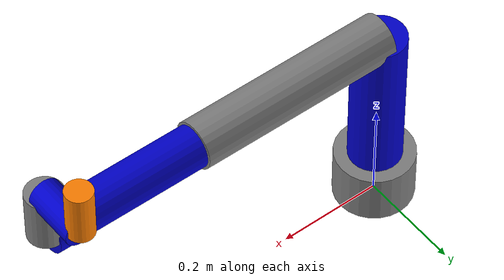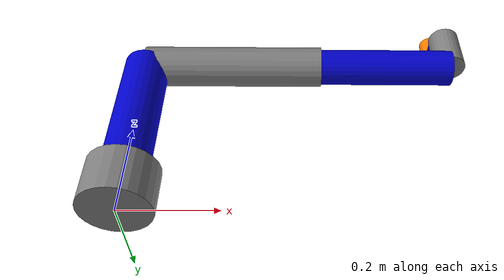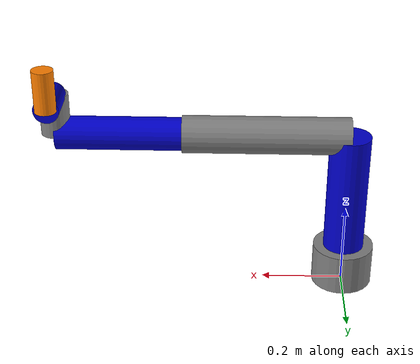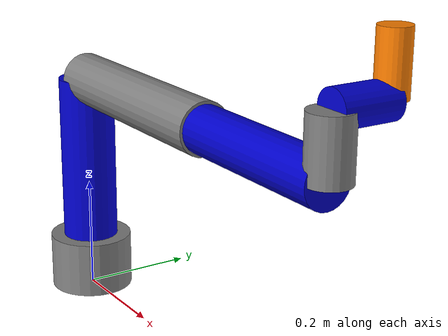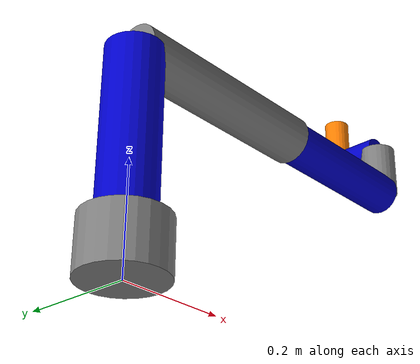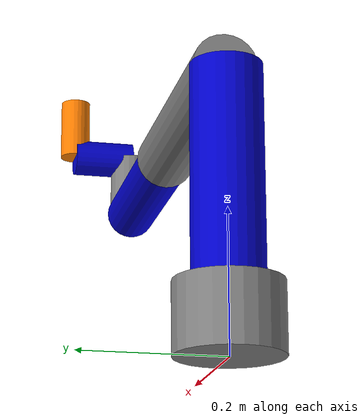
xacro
<?xml version="1.0"?>
<robot name="simple_manipulator" xmlns:xacro="http://www.ros.org/wiki/xacro">

  <!-- Constants -->
  <xacro:property name="PI" value="3.14159265359" />

  <!-- Material definitions -->
  <material name="blue">
    <color rgba="0.0 0.0 0.8 1.0"/>
  </material>

  <material name="grey">
    <color rgba="0.5 0.5 0.5 1.0"/>
  </material>

  <material name="orange">
    <color rgba="1.0 0.5 0.0 1.0"/>
  </material>

  <!-- World link (fixed base) -->
  <link name="world"/>

  <!-- Base link -->
  <link name="base_link">
    <visual>
      <origin xyz="0 0 0.05" rpy="0 0 0"/>
      <geometry>
        <cylinder radius="0.075" length="0.1"/>
      </geometry>
      <material name="grey"/>
    </visual>
    <collision>
      <origin xyz="0 0 0.05" rpy="0 0 0"/>
      <geometry>
        <cylinder radius="0.075" length="0.1"/>
      </geometry>
    </collision>
    <inertial>
      <mass value="2.0"/>
      <origin xyz="0 0 0.05" rpy="0 0 0"/>
      <inertia ixx="0.01" ixy="0.0" ixz="0.0" iyy="0.01" iyz="0.0" izz="0.01"/>
    </inertial>
  </link>

  <joint name="world_to_base" type="fixed">
    <parent link="world"/>
    <child link="base_link"/>
    <origin xyz="0 0 0" rpy="0 0 0"/>
  </joint>

  <!-- Link 1 (Shoulder) -->
  <link name="link_1">
    <visual>
      <origin xyz="0 0 0.15" rpy="0 0 0"/>
      <geometry>
        <cylinder radius="0.05" length="0.3"/>
      </geometry>
      <material name="blue"/>
    </visual>
    <collision>
      <origin xyz="0 0 0.15" rpy="0 0 0"/>
      <geometry>
        <cylinder radius="0.05" length="0.3"/>
      </geometry>
    </collision>
    <inertial>
      <mass value="1.5"/>
      <origin xyz="0 0 0.15" rpy="0 0 0"/>
      <inertia ixx="0.02" ixy="0.0" ixz="0.0" iyy="0.02" iyz="0.0" izz="0.005"/>
    </inertial>
  </link>

  <joint name="joint_1" type="revolute">
    <parent link="base_link"/>
    <child link="link_1"/>
    <origin xyz="0 0 0.1" rpy="0 0 0"/>
    <axis xyz="0 0 1"/>
    <limit lower="${-PI}" upper="${PI}" effort="150.0" velocity="1.0"/>
    <dynamics damping="2.0" friction="0.1"/>
  </joint>

  <!-- Link 2 (Upper Arm) -->
  <link name="link_2">
    <visual>
      <origin xyz="0.2 0 0" rpy="0 ${PI/2} 0"/>
      <geometry>
        <cylinder radius="0.045" length="0.4"/>
      </geometry>
      <material name="grey"/>
    </visual>
    <collision>
      <origin xyz="0.2 0 0" rpy="0 ${PI/2} 0"/>
      <geometry>
        <cylinder radius="0.045" length="0.4"/>
      </geometry>
    </collision>
    <inertial>
      <mass value="1.2"/>
      <origin xyz="0.2 0 0" rpy="0 ${PI/2} 0"/>
      <inertia ixx="0.01" ixy="0.0" ixz="0.0" iyy="0.02" iyz="0.0" izz="0.02"/>
    </inertial>
  </link>

  <joint name="joint_2" type="revolute">
    <parent link="link_1"/>
    <child link="link_2"/>
    <origin xyz="0 0 0.3" rpy="0 0 0"/>
    <axis xyz="0 1 0"/>
    <limit lower="${-PI}" upper="${PI}" effort="150.0" velocity="1.0"/>
    <dynamics damping="2.0" friction="0.1"/>
  </joint>

  <!-- Link 3 (Forearm) -->
  <link name="link_3">
    <visual>
      <origin xyz="0.15 0 0" rpy="0 ${PI/2} 0"/>
      <geometry>
        <cylinder radius="0.04" length="0.3"/>
      </geometry>
      <material name="blue"/>
    </visual>
    <collision>
      <origin xyz="0.15 0 0" rpy="0 ${PI/2} 0"/>
      <geometry>
        <cylinder radius="0.04" length="0.3"/>
      </geometry>
    </collision>
    <inertial>
      <mass value="1.0"/>
      <origin xyz="0.15 0 0" rpy="0 ${PI/2} 0"/>
      <inertia ixx="0.008" ixy="0.0" ixz="0.0" iyy="0.015" iyz="0.0" izz="0.015"/>
    </inertial>
  </link>

  <joint name="joint_3" type="revolute">
    <parent link="link_2"/>
    <child link="link_3"/>
    <origin xyz="0.4 0 0" rpy="0 0 0"/>
    <axis xyz="0 1 0"/>
    <limit lower="${-PI}" upper="${PI}" effort="100.0" velocity="1.0"/>
    <dynamics damping="2.0" friction="0.1"/>
  </joint>

  <!-- Link 4 (Wrist 1) -->
  <link name="wrist_1_link">
    <visual>
      <origin xyz="0 0 0.05" rpy="0 0 0"/>
      <geometry>
        <cylinder radius="0.035" length="0.1"/>
      </geometry>
      <material name="grey"/>
    </visual>
    <collision>
      <origin xyz="0 0 0.05" rpy="0 0 0"/>
      <geometry>
        <cylinder radius="0.035" length="0.1"/>
      </geometry>
    </collision>
    <inertial>
      <mass value="0.8"/>
      <origin xyz="0 0 0.05" rpy="0 0 0"/>
      <inertia ixx="0.005" ixy="0.0" ixz="0.0" iyy="0.005" iyz="0.0" izz="0.003"/>
    </inertial>
  </link>

  <joint name="joint_4" type="revolute">
    <parent link="link_3"/>
    <child link="wrist_1_link"/>
    <origin xyz="0.3 0 0" rpy="0 0 0"/>
    <axis xyz="0 1 0"/>
    <limit lower="${-PI}" upper="${PI}" effort="50.0" velocity="0.8"/>
    <dynamics damping="1.5" friction="0.05"/>
  </joint>

  <!-- Link 5 (Wrist 2) -->
  <link name="wrist_2_link">
    <visual>
      <origin xyz="0 0.05 0" rpy="${PI/2} 0 0"/>
      <geometry>
        <cylinder radius="0.03" length="0.1"/>
      </geometry>
      <material name="blue"/>
    </visual>
    <collision>
      <origin xyz="0 0.05 0" rpy="${PI/2} 0 0"/>
      <geometry>
        <cylinder radius="0.03" length="0.1"/>
      </geometry>
    </collision>
    <inertial>
      <mass value="0.6"/>
      <origin xyz="0 0.05 0" rpy="${PI/2} 0 0"/>
      <inertia ixx="0.003" ixy="0.0" ixz="0.0" iyy="0.003" iyz="0.0" izz="0.002"/>
    </inertial>
  </link>

  <joint name="joint_5" type="revolute">
    <parent link="wrist_1_link"/>
    <child link="wrist_2_link"/>
    <origin xyz="0 0 0.1" rpy="0 0 0"/>
    <axis xyz="0 0 1"/>
    <limit lower="${-PI}" upper="${PI}" effort="50.0" velocity="0.8"/>
    <dynamics damping="1.5" friction="0.05"/>
  </joint>

  <!-- Link 6 (Wrist 3 / End Effector) -->
  <link name="wrist_3_link">
    <visual>
      <origin xyz="0 0 0.05" rpy="0 0 0"/>
      <geometry>
        <cylinder radius="0.025" length="0.1"/>
      </geometry>
      <material name="orange"/>
    </visual>
    <collision>
      <origin xyz="0 0 0.05" rpy="0 0 0"/>
      <geometry>
        <cylinder radius="0.025" length="0.1"/>
      </geometry>
    </collision>
    <inertial>
      <mass value="0.5"/>
      <origin xyz="0 0 0.05" rpy="0 0 0"/>
      <inertia ixx="0.002" ixy="0.0" ixz="0.0" iyy="0.002" iyz="0.0" izz="0.001"/>
    </inertial>
  </link>

  <joint name="joint_6" type="revolute">
    <parent link="wrist_2_link"/>
    <child link="wrist_3_link"/>
    <origin xyz="0 0.1 0" rpy="0 0 0"/>
    <axis xyz="0 1 0"/>
    <limit lower="${-PI}" upper="${PI}" effort="50.0" velocity="0.8"/>
    <dynamics damping="1.5" friction="0.05"/>
  </joint>

  <!-- Gazebo materials and friction -->
  <gazebo reference="base_link">
    <material>Gazebo/Grey</material>
    <mu1>0.2</mu1>
    <mu2>0.2</mu2>
  </gazebo>

  <gazebo reference="link_1">
    <material>Gazebo/Blue</material>
    <mu1>0.2</mu1>
    <mu2>0.2</mu2>
  </gazebo>

  <gazebo reference="link_2">
    <material>Gazebo/Grey</material>
    <mu1>0.2</mu1>
    <mu2>0.2</mu2>
  </gazebo>

  <gazebo reference="link_3">
    <material>Gazebo/Blue</material>
    <mu1>0.2</mu1>
    <mu2>0.2</mu2>
  </gazebo>

  <gazebo reference="wrist_1_link">
    <material>Gazebo/Grey</material>
    <mu1>0.2</mu1>
    <mu2>0.2</mu2>
  </gazebo>

  <gazebo reference="wrist_2_link">
    <material>Gazebo/Blue</material>
    <mu1>0.2</mu1>
    <mu2>0.2</mu2>
  </gazebo>

  <gazebo reference="wrist_3_link">
    <material>Gazebo/Orange</material>
    <mu1>0.2</mu1>
    <mu2>0.2</mu2>
  </gazebo>

  <!-- Gazebo ros_control plugin -->
  <gazebo>
    <plugin name="gazebo_ros_control" filename="libgazebo_ros_control.so">
      <robotNamespace>/manipulator</robotNamespace>
      <robotSimType>gazebo_ros_control/DefaultRobotHWSim</robotSimType>
    </plugin>
    <self_collide>false</self_collide>
  </gazebo>

  <!-- Transmissions for ros_control -->
  <transmission name="trans_joint_1">
    <type>transmission_interface/SimpleTransmission</type>
    <joint name="joint_1">
      <hardwareInterface>hardware_interface/PositionJointInterface</hardwareInterface>
    </joint>
    <actuator name="motor_1">
      <hardwareInterface>hardware_interface/PositionJointInterface</hardwareInterface>
      <mechanicalReduction>1</mechanicalReduction>
    </actuator>
  </transmission>

  <transmission name="trans_joint_2">
    <type>transmission_interface/SimpleTransmission</type>
    <joint name="joint_2">
      <hardwareInterface>hardware_interface/PositionJointInterface</hardwareInterface>
    </joint>
    <actuator name="motor_2">
      <hardwareInterface>hardware_interface/PositionJointInterface</hardwareInterface>
      <mechanicalReduction>1</mechanicalReduction>
    </actuator>
  </transmission>

  <transmission name="trans_joint_3">
    <type>transmission_interface/SimpleTransmission</type>
    <joint name="joint_3">
      <hardwareInterface>hardware_interface/PositionJointInterface</hardwareInterface>
    </joint>
    <actuator name="motor_3">
      <hardwareInterface>hardware_interface/PositionJointInterface</hardwareInterface>
      <mechanicalReduction>1</mechanicalReduction>
    </actuator>
  </transmission>

  <transmission name="trans_joint_4">
    <type>transmission_interface/SimpleTransmission</type>
    <joint name="joint_4">
      <hardwareInterface>hardware_interface/PositionJointInterface</hardwareInterface>
    </joint>
    <actuator name="motor_4">
      <hardwareInterface>hardware_interface/PositionJointInterface</hardwareInterface>
      <mechanicalReduction>1</mechanicalReduction>
    </actuator>
  </transmission>

  <transmission name="trans_joint_5">
    <type>transmission_interface/SimpleTransmission</type>
    <joint name="joint_5">
      <hardwareInterface>hardware_interface/PositionJointInterface</hardwareInterface>
    </joint>
    <actuator name="motor_5">
      <hardwareInterface>hardware_interface/PositionJointInterface</hardwareInterface>
      <mechanicalReduction>1</mechanicalReduction>
    </actuator>
  </transmission>

  <transmission name="trans_joint_6">
    <type>transmission_interface/SimpleTransmission</type>
    <joint name="joint_6">
      <hardwareInterface>hardware_interface/PositionJointInterface</hardwareInterface>
    </joint>
    <actuator name="motor_6">
      <hardwareInterface>hardware_interface/PositionJointInterface</hardwareInterface>
      <mechanicalReduction>1</mechanicalReduction>
    </actuator>
  </transmission>

</robot>
